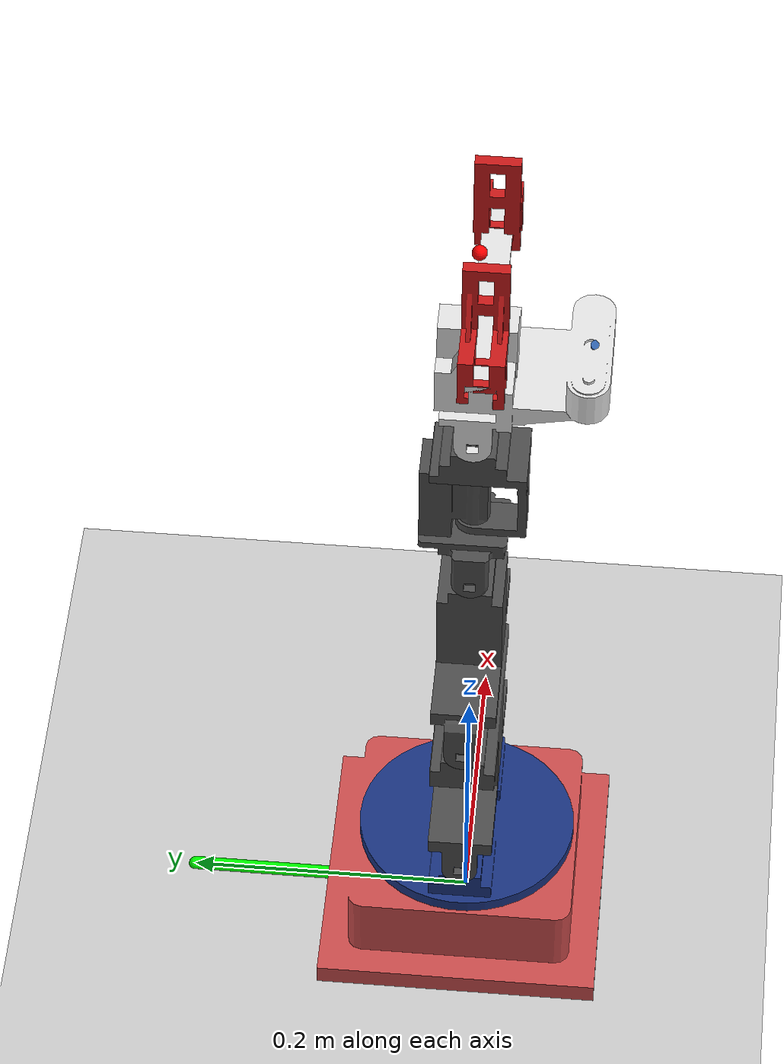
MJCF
<mujoco model="robot">

  <compiler angle="radian"/>

  <option timestep="0.002" gravity="0 0 -9.81"/>

  <asset>
    <mesh name="base_link" file="base_link.stl" />
    <mesh name="link1" file="link_1.stl" />
    <mesh name="link2" file="link_2.stl" />
    <mesh name="link3" file="link_3.stl" />
    <mesh name="link4" file="link_4.stl" />
    <mesh name="link5" file="link_5.stl" />
    <mesh name="gripper_base_link" file="gripper_base_link.stl" />
    <mesh name="gripper_left_finger_link" file="gripper_link_left.stl" />
    <mesh name="gripper_right_finger_link" file="gripper_link_right.stl" />
    <mesh name="camera" file="camera.stl" />
  </asset>

  <worldbody>
    <!-- X axis (red) -->
    <geom type="capsule" fromto="0 0 0  0.2 0 0"
          size="0.005" rgba="1 0 0 1"/>

    <!-- Y axis (green) -->
    <geom type="capsule" fromto="0 0 0  0 0.2 0"
          size="0.005" rgba="0 1 0 1"/>

    <!-- Z axis (blue) -->
    <geom type="capsule" fromto="0 0 0  0 0 0.2"
          size="0.005" rgba="0 0 1 1"/>
    <geom name="ground" type="plane" pos="0 0 0" size="5 5 0.1" rgba="0.8 0.8 0.8 1"/>
    <light name="main_light" pos="0 0 5" dir="0 0 -1" diffuse="1 1 1" specular="0.5 0.5 0.5" castshadow="true"/>

    <!-- Base -->
    <body name="base_link" pos="0 0 0.0">
      <inertial pos="0 0.0 0.005" mass="1.7941" diaginertia="0.0048349 0.0083635 0.0048349"/>
      <geom mesh="base_link" type="mesh" rgba="0.8 0.3 0.3 1"/>

      <!-- Link1 -->
      <body name="link1" pos="0 0 0.0592">
        <inertial pos="-0.00038036 0.0 0.03050633" mass="0.23683291" diaginertia="0.00039491 0.00077141 0.00059233"/>
        <geom mesh="link1" type="mesh" rgba="0.1 0.2 0.5 1" />
        <joint name="joint1" type="hinge" axis="0 0 1" range="-2.09 2.09"/>

        <!-- Link2 -->
        <body name="link2" pos="0 0 0.0508">
          <inertial pos="0.00053811 0.0 0.08784697" mass="0.26340123" diaginertia="0.00247044 0.00296718 0.00054702"/>
          <geom mesh="link2" type="mesh" rgba="0.3 0.3 0.3 1" />
          <joint name="joint2" type="hinge" axis="1 0 0" range="-1.57 1.57"/>

          <!-- Link3 -->
          <body name="link3" pos="0 0 0.125">
            <inertial pos="-0.00027016 -0.00023131 0.07622061" mass="0.16450681" diaginertia="0.00129140 0.00138544 0.00015324"/><geom mesh="link3" type="mesh" rgba="0.3 0.3 0.3 1"/>
            <joint name="joint3" type="hinge" axis="1 0 0" range="-1.57 1.57"/>

            <!-- Link4 -->
            <body name="link4" pos="0 0 0.125" >
              <inertial pos="0.0 0.00932713 0.05303399" mass="0.10867011" diaginertia="0.00040570 0.00037552 0.00004410"/>
              <geom mesh="link4" type="mesh" rgba="0.3 0.3 0.3 1"/>
              <joint name="joint4" type="hinge" axis="0 1 0" range="-1.57 1.57"/>

              <!-- Link5 -->
              <body name="link5" pos="0.0 0.0 0.065" >
                <inertial pos="-0.00039819 -0.00306049 0.04570833" mass="0.11311685" diaginertia="0.00034785 0.00035044 0.00003925"/>
                <geom mesh="link5" type="mesh" rgba="0.3 0.3 0.3 1"/>
                <joint name="joint5" type="hinge" axis="0 0 1" range="-1.57 1.57"/>

                <!-- Tool link -->
                <body name="tool_link" pos="0.0 0.0 0.07">
                  <joint name="joint6" type="hinge" axis="1 0 0" range="-1.57 1.57"/>

                  <!-- Gripper -->
                  <body name="gripper_base_link" >
                    <inertial pos="-0.00013639 -0.00931502 0.06177552" mass="0.18022257" diaginertia="0.00087332 0.00090601 0.00018951"/>
                    <geom mesh="gripper_base_link" type="mesh" rgba="0.9 0.9 0.9 1"/>

                    <body name="gripper_left_finger_link" pos="0.0 -0.00758 0.106">
                      <inertial pos="-0.04936121 -0.00165819 0.00790974" mass="0.01666" diaginertia="0.00000859 0.00005127 0.00004602"/>
                      <geom mesh="gripper_left_finger_link" type="mesh" rgba="0.8 0.1 0.1 1" />
                    </body>

                    <body name="gripper_right_finger_link" pos="0.0 -0.00758 0.106">
                      <inertial pos="0.04936121 -0.00165819 0.00790974" mass="0.01666" diaginertia="0.00000859 0.00005127 0.00004602"/>
                      <geom mesh="gripper_right_finger_link" type="mesh" rgba="0.8 0.1 0.1 1" />
                    </body>

                    <body name="camera" pos="0 -0.078 0.07052">
                      <inertial pos="0.0 0.0 -0.0005" mass="0.072" diaginertia="0.00000047 0.00000047 0.00000090"/>
                      <geom mesh="camera" type="mesh" rgba="0.2 0.4 0.7 1"/>
                      <camera name="ee_camera" pos="0 0 0" euler="0 180 0"/>
                    </body>

                    <body name="ee_ref_link" pos="0 0 0.146">
                      <!-- Visual only -->
                      <geom type="sphere" size="0.005" rgba="1 0 0 1" contype="0" conaffinity="0"/>
                    </body>

                  </body>
                </body>
              </body>
            </body>
          </body>
        </body>
      </body>
    </body>
  </worldbody>

  <actuator>
    <position name="joint1" joint="joint1" ctrllimited="true" ctrlrange="-2.09 2.09" kp="1" kv="0.1"/>
    <position name="joint2" joint="joint2" ctrllimited="true" ctrlrange="-1.57 1.57" kp="1" kv="0.1"/>
    <position name="joint3" joint="joint3" ctrllimited="true" ctrlrange="-1.57 1.57" kp="1" kv="0.1"/>
    <position name="joint4" joint="joint4" ctrllimited="true" ctrlrange="-1.57 1.57" kp="1" kv="0.1"/>
    <position name="joint5" joint="joint5" ctrllimited="true" ctrlrange="-1.57 1.57" kp="1" kv="0.1"/>
    <position name="joint6" joint="joint6" ctrllimited="true" ctrlrange="-1.57 1.57" kp="1" kv="0.1"/>
  </actuator>

  <keyframe>
    <key name="home" qpos="0 0 0 0 0 0"/>
  </keyframe>

</mujoco>
